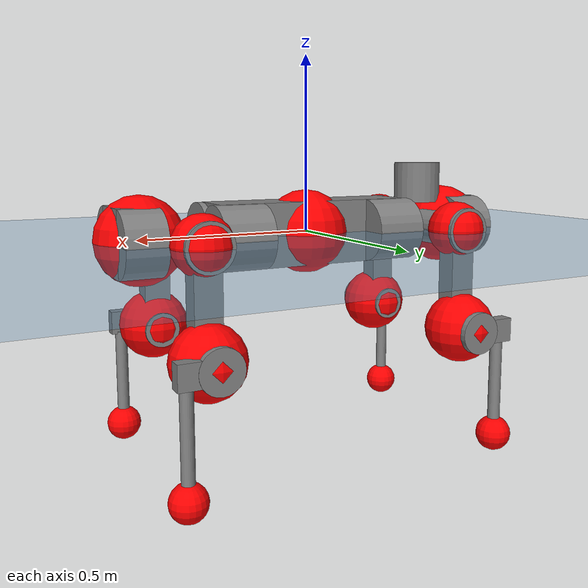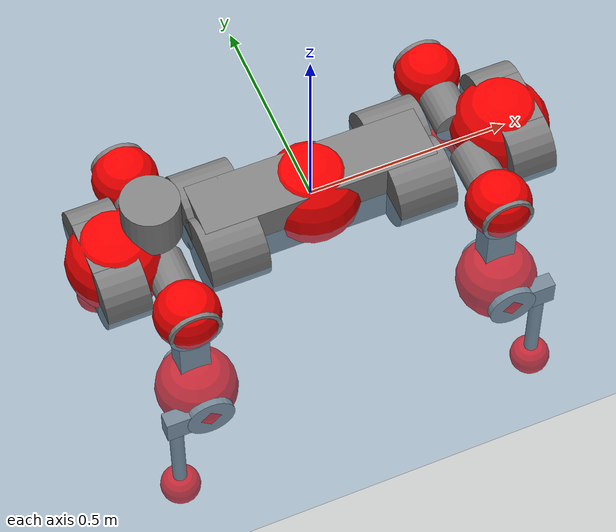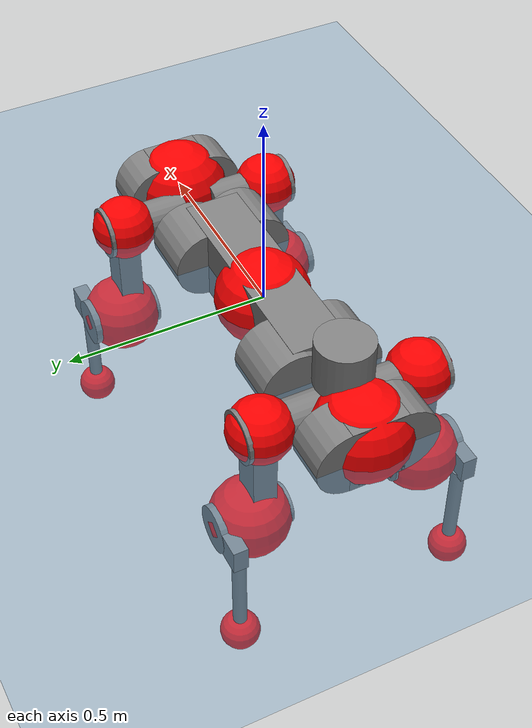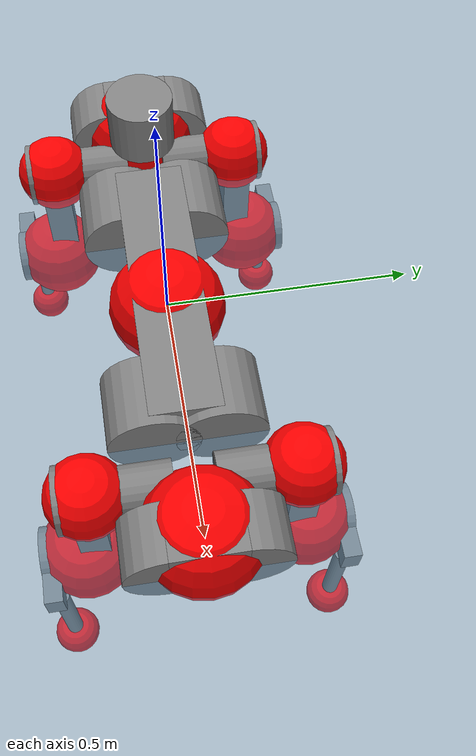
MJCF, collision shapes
<mujoco model="anymal_c">
  <compiler angle="radian" assetdir="assets" balanceinertia="true" inertiafromgeom="false"/>

  <option timestep="0.005" density="1.2" viscosity="2e-05"/>

  <size nkey="1"/>

  <visual>
    <quality shadowsize="8192"/>
    <map shadowclip="0.5"/>
  </visual>

  <default>
    <default class="/">
      <material specular="0" shininess="0.25"/>
      <geom contype="0" conaffinity="0" group="1" solref="-1000 -80"/>
      <site size="0.01 0.005 0.005" group="5"/>
      <general forcelimited="true" forcerange="-80 80" biastype="affine" gainprm="80" biasprm="0 -80 -2"/>
      <default class="anymal_c">
        <joint armature="0.01" damping="0.01" frictionloss="0.1"/>
        <default class="visual">
          <geom type="mesh" group="2"/>
          <default class="visual_zflip"/>
        </default>
        <default class="collision">
          <geom type="cylinder" group="3"/>
          <default class="foot">
            <geom size="0.03 0 0" type="sphere" condim="6" priority="1" friction="0.8 0.02 0.01" solimp="0.015 1 0.03"/>
          </default>
        </default>
      </default>
      <default class="reward_collision_sphere">
        <geom group="5" rgba="1 0 0 1"/>
      </default>
    </default>
  </default>

  <asset>
    <texture type="skybox" colorspace="auto" name="//unnamed_texture_0" builtin="gradient" rgb1="0.95 0.95 0.95" rgb2="0.95 0.95 0.95" width="100" height="600"/>
    <texture type="2d" colorspace="auto" name="texplane" builtin="checker" rgb1="0.345 0.575 0.748" rgb2="0.345 0.575 0.748" markrgb="1 1 1" width="512" height="512"/>
    <texture type="2d" colorspace="linear" name="base" file="base.png"/>
    <texture type="2d" colorspace="linear" name="top_shell" file="top_shell.png"/>
    <texture type="2d" colorspace="linear" name="bottom_shell" file="bottom_shell.png"/>
    <texture type="2d" colorspace="linear" name="remote" file="remote.png"/>
    <texture type="2d" colorspace="linear" name="hatch" file="hatch.png"/>
    <texture type="2d" colorspace="linear" name="handle" file="handle.png"/>
    <texture type="2d" colorspace="linear" name="face" file="face.png"/>
    <texture type="2d" colorspace="linear" name="battery" file="battery.png"/>
    <texture type="2d" colorspace="linear" name="lidar_cage" file="lidar_cage.png"/>
    <texture type="2d" colorspace="linear" name="depth_camera" file="depth_camera.png"/>
    <texture type="2d" colorspace="linear" name="wide_angle_camera" file="wide_angle_camera.png"/>
    <texture type="2d" colorspace="linear" name="lidar" file="lidar.png"/>
    <texture type="2d" colorspace="linear" name="drive" file="drive.png"/>
    <texture type="2d" colorspace="linear" name="hip_l" file="hip_l.png"/>
    <texture type="2d" colorspace="linear" name="shank_l" file="shank_l.png"/>
    <texture type="2d" colorspace="linear" name="foot" file="foot.png"/>
    <texture type="2d" colorspace="linear" name="thigh" file="thigh.png"/>
    <texture type="2d" colorspace="linear" name="shank_r" file="shank_r.png"/>
    <texture type="2d" colorspace="linear" name="hip_r" file="hip_r.png"/>
    <material name="MatPlane" class="/" texture="texplane" texuniform="true" texrepeat="2 2" specular="0.9" shininess="0.5"/>
    <material name="black_plastic" class="/" rgba="0.007 0.007 0.007 1"/>
    <material name="green" class="/" rgba="0.052 0.178 0.033 1"/>
    <material name="red" class="/" rgba="0.178 0.006 0.005 1"/>
    <material name="yellow" class="/" rgba="0.178 0.119 0.006 1"/>
    <material name="lwl" class="/" rgba="0.8 0.8 0.8 1"/>
    <material name="base" class="/" texture="base"/>
    <material name="top_shell" class="/" texture="top_shell"/>
    <material name="bottom_shell" class="/" texture="bottom_shell"/>
    <material name="hip_l" class="/" texture="hip_l"/>
    <material name="thigh" class="/" texture="thigh"/>
    <material name="shank_l" class="/" texture="shank_l"/>
    <material name="foot" class="/" texture="foot"/>
    <material name="hip_r" class="/" texture="hip_r"/>
    <material name="shank" class="/" texture="shank_r"/>
    <material name="hatch" class="/" texture="hatch"/>
    <material name="remote" class="/" texture="remote"/>
    <material name="handle" class="/" texture="handle"/>
    <material name="face" class="/" texture="face"/>
    <material name="depth_camera" class="/" texture="depth_camera"/>
    <material name="wide_angle_camera" class="/" texture="wide_angle_camera"/>
    <material name="battery" class="/" texture="battery"/>
    <material name="lidar_cage" class="/" texture="lidar_cage"/>
    <material name="lidar" class="/" texture="lidar"/>
    <material name="drive" class="/" texture="drive"/>
    <mesh name="base_0" class="/" file="base_0.obj"/>
    <mesh name="base_1" class="/" file="base_1.obj"/>
    <mesh name="base_2" class="/" file="base_2.obj"/>
    <mesh name="base_3" class="/" file="base_3.obj"/>
    <mesh name="base_4" class="/" file="base_4.obj"/>
    <mesh name="base_5" class="/" file="base_5.obj"/>
    <mesh name="top_shell" class="/" file="top_shell.obj"/>
    <mesh name="bottom_shell" class="/" file="bottom_shell.obj"/>
    <mesh name="remote" class="/" file="remote.obj"/>
    <mesh name="handle" class="/" file="handle.obj"/>
    <mesh name="face" class="/" file="face.obj"/>
    <mesh name="wide_angle_camera" class="/" file="wide_angle_camera.obj"/>
    <mesh name="depth_camera" class="/" file="depth_camera.obj"/>
    <mesh name="battery" class="/" file="battery.obj"/>
    <mesh name="lidar_cage" class="/" file="lidar_cage.obj"/>
    <mesh name="lidar" class="/" file="lidar.obj"/>
    <mesh name="drive" class="/" file="drive.obj"/>
    <mesh name="hip_l" class="/" file="hip_l.obj"/>
    <mesh name="thigh" class="/" file="thigh.obj"/>
    <mesh name="shank_l" class="/" file="shank_l.obj"/>
    <mesh name="foot" class="/" file="foot.obj"/>
    <mesh name="hip_r" class="/" file="hip_r.obj"/>
    <mesh name="hatch" class="/" file="hatch.obj"/>
    <mesh name="shank_r" class="/" file="shank_r.obj"/>
  </asset>

  <worldbody>
    <geom name="floor" class="/" size="100 100 0.125" type="plane" group="0" material="MatPlane"/>
    <light name="toplight_shadow" class="/" pos="0 0 5" dir="0.0990148 0.0990148 -0.990148" type="directional" ambient="0.04 0.04 0.04" diffuse="0.55 0.55 0.55" specular="0.12 0.12 0.12"/>
    <light name="toplight_fill" class="/" pos="0 0 5" dir="0.0990148 0.0990148 -0.990148" type="directional" castshadow="false" ambient="0.04 0.04 0.04" diffuse="0.3 0.3 0.3" specular="0.08 0.08 0.08"/>
    <body name="trunk" childclass="anymal_c" pos="0.00178825 -9.54232e-05 0.000956122" quat="1 -4.89347e-05 0.000620516 -0.000203467">
      <inertial pos="0.000891892 -0.000892138 0.0493563" quat="0.498491 0.500214 0.50085 0.500441" mass="18.6978" diaginertia="0.955982 0.414285 0.211722"/>
      <joint name="//unnamed_joint_0" type="free" armature="0" damping="0" frictionloss="0"/>
      <geom name="//unnamed_geom_1" class="visual" material="green" mesh="base_0"/>
      <geom name="//unnamed_geom_2" class="visual" material="yellow" mesh="base_1"/>
      <geom name="//unnamed_geom_3" class="visual" material="red" mesh="base_2"/>
      <geom name="//unnamed_geom_4" class="visual" material="black_plastic" mesh="base_3"/>
      <geom name="//unnamed_geom_5" class="visual" material="lwl" mesh="base_4"/>
      <geom name="//unnamed_geom_6" class="visual" material="base" mesh="base_5"/>
      <geom name="trunk_1" class="collision" size="0.290179 0.0700431 0.0900554" type="box"/>
      <geom name="trunk_2" class="collision" size="0.0900554 0.0725447" pos="0.235652 0.0645117 0" quat="0.707107 0 0.707107 0"/>
      <geom name="trunk_3" class="collision" size="0.0900554 0.0725447" pos="-0.235652 0.0645117 0" quat="0.707107 0 0.707107 0"/>
      <geom name="trunk_4" class="collision" size="0.0900554 0.0725447" pos="0.235652 -0.0645117 0" quat="0.707107 0 0.707107 0"/>
      <geom name="trunk_5" class="collision" size="0.0900554 0.0725447" pos="-0.235652 -0.0645117 0" quat="0.707107 0 0.707107 0"/>
      <geom name="//unnamed_geom_12" class="visual" material="top_shell" mesh="top_shell"/>
      <geom name="//unnamed_geom_13" class="visual" material="bottom_shell" mesh="bottom_shell"/>
      <geom name="//unnamed_geom_14" class="visual" material="remote" mesh="remote"/>
      <geom name="//unnamed_geom_15" class="visual" material="handle" mesh="handle"/>
      <geom name="//unnamed_geom_16" class="visual" pos="0.449094 0 0" quat="1 0 0 0" material="face" mesh="face"/>
      <geom name="trunk_6" class="collision" size="0.0550339 0.0700431 0.0900554" pos="0.508684 0 0" type="box"/>
      <geom name="//unnamed_geom_18" class="collision" size="0.0900554 0.0550339" pos="0.508684 0.0645117 0" quat="0.707107 0 0.707107 0"/>
      <geom name="//unnamed_geom_19" class="collision" size="0.0900554 0.0550339" pos="0.508684 -0.0645117 0" quat="0.707107 0 0.707107 0"/>
      <geom name="//unnamed_geom_20" class="visual" pos="0.500175 0 -0.0284477" quat="0.965926 0 0.258819 0" material="depth_camera" mesh="depth_camera"/>
      <geom name="//unnamed_geom_21" class="visual" pos="0.555814 0 0.014922" material="wide_angle_camera" mesh="wide_angle_camera"/>
      <geom name="//unnamed_geom_22" class="visual_zflip" pos="-0.449094 0 0" quat="0 0 0 1" material="face" mesh="face"/>
      <geom name="trunk_7" class="collision" size="0.0550339 0.0700431 0.0900554" pos="-0.508684 0 0" quat="0 0 0 1" type="box"/>
      <geom name="//unnamed_geom_24" class="collision" size="0.0900554 0.0550339" pos="-0.508684 -0.0645117 0" quat="0 -0.707107 0 0.707107"/>
      <geom name="//unnamed_geom_25" class="collision" size="0.0900554 0.0550339" pos="-0.508684 0.0645117 0" quat="0 -0.707107 0 0.707107"/>
      <geom name="//unnamed_geom_26" class="visual" pos="-0.500175 0 -0.0284477" quat="0 -0.258819 0 0.965926" material="depth_camera" mesh="depth_camera"/>
      <geom name="//unnamed_geom_27" class="visual_zflip" pos="-0.555814 0 0.014922" quat="0 0 0 1" material="wide_angle_camera" mesh="wide_angle_camera"/>
      <geom name="//unnamed_geom_28" class="visual" material="battery" mesh="battery"/>
      <geom name="//unnamed_geom_29" class="visual" pos="0 0.0683377 0.0296155" quat="0.683013 -0.183013 0.183013 0.683013" material="depth_camera" mesh="depth_camera"/>
      <geom name="//unnamed_geom_30" class="visual" pos="0 -0.0683377 0.0296155" quat="0.683013 0.183013 0.183013 -0.683013" material="depth_camera" mesh="depth_camera"/>
      <geom name="//unnamed_geom_31" class="visual" pos="-0.394379 0 0.0732643" quat="1 0 0 0" material="lidar_cage" mesh="lidar_cage"/>
      <geom name="trunk_8" class="collision" size="0.0700431 0.060037" pos="-0.394379 0 0.133072"/>
      <geom name="//unnamed_geom_33" class="visual" pos="-0.394379 -6.35916e-05 0.141744" quat="0.707107 0 0 -0.707107" material="lidar" mesh="lidar"/>
      <geom name="//unnamed_geom_34" class="visual" pos="0.324929 0.0958727 -1.29716e-09" quat="0.258819 0.965926 0 0" material="drive" mesh="drive"/>
      <geom name="//unnamed_geom_35" class="visual" pos="0.324929 -0.0958727 1.29716e-09" quat="0.258819 -0.965926 0 0" material="drive" mesh="drive"/>
      <geom name="//unnamed_geom_36" class="visual" pos="-0.324929 0.0958727 1.29716e-09" quat="0 0 0.965926 -0.258819" material="drive" mesh="drive"/>
      <geom name="//unnamed_geom_37" class="visual" pos="-0.324929 -0.0958727 -1.29716e-09" quat="0 0 -0.965926 -0.258819" material="drive" mesh="drive"/>
      <geom name="//unnamed_geom_38" class="visual" pos="0.125681 0 0.0727659" quat="1 0 0 0" material="hatch" mesh="hatch"/>
      <geom name="//unnamed_geom_39" class="reward_collision_sphere" size="0.120074"/>
      <geom name="//unnamed_geom_40" class="reward_collision_sphere" size="0.120074" pos="0.487557 0 0"/>
      <geom name="//unnamed_geom_41" class="reward_collision_sphere" size="0.120074" pos="-0.487557 0 0"/>
      <site name="imu" pos="0.268347 0.00369915 0.0518235" size="0.0100062"/>
      <camera name="track" pos="0 -1.84319 0" quat="0.707107 0.707107 0 0" mode="trackcom"/>
      <camera name="ego_camera" pos="0.487557 0 -0.0398717" quat="-0.5 -0.5 0.5 0.5"/>
      <body name="LF_HIP" pos="0.3253 0.0958878 4.25273e-05" quat="0.258944 0.965892 0.000474883 7.24605e-05">
        <inertial pos="0.0613712 -0.0137817 -0.00871142" quat="-0.127308 0.711032 -0.135929 0.678048" mass="2.82173" diaginertia="0.00895134 0.00323714 0.00323276"/>
        <joint name="LF_HAA" pos="0 0 0" axis="0.999936 -0.00878158 -0.00711729" range="-0.686352 0.47933" armature="0.00992154" damping="0.00550531" frictionloss="0.0994836"/>
        <geom name="//unnamed_geom_42" class="visual" pos="0 -7.63058e-05 1.25332e-05" quat="0.258819 -0.965926 0 0" material="hip_l" mesh="hip_l"/>
        <geom name="//unnamed_geom_43" class="visual" pos="0.0648992 -0.0765347 -0.0447435" quat="0.183013 -0.683013 0.683013 0.183013" material="drive" mesh="drive"/>
        <geom name="//unnamed_geom_44" class="collision" size="0.0500308 0.0700431" pos="0.0648992 -0.0110221 -0.00688286" quat="-0.353553 -0.612372 0.612372 -0.353553"/>
        <body name="LF_THIGH" pos="0.0642914 -0.0669288 -0.0430503" quat="0.182724 -0.683073 0.683083 0.182815">
          <inertial pos="0.0336122 0.000554297 -0.246112" quat="0.993157 -0.00501073 -0.0807478 0.0842273" mass="3.07393" diaginertia="0.0446071 0.0198936 0.00421277"/>
          <joint name="LF_HFE" pos="0 0 0" axis="0.999995 -0.000218768 -0.00300686" range="-3.16145 3.14124" armature="0.0103743" damping="0.00852291" frictionloss="0.104091"/>
          <geom name="//unnamed_geom_45" class="visual" pos="0.00322043 5.07465e-06 0" quat="0.707107 0 0 -0.707107" material="thigh" mesh="thigh"/>
          <geom name="//unnamed_geom_46" class="collision" size="0.06504 0.0400246" pos="0.0433384 0 0" quat="0.5 0.5 -0.5 -0.5"/>
          <geom name="//unnamed_geom_47" class="collision" size="0.0375231 0.0300185 0.141401" pos="0.0325038 0 -0.140861" quat="0.707107 0 0 -0.707107" type="box"/>
          <geom name="//unnamed_geom_48" class="visual" pos="0.108671 0 -0.284086" quat="1 0 0 0" material="drive" mesh="drive"/>
          <geom name="//unnamed_geom_49" class="collision" size="0.0500308 0.0700431" pos="0.0328288 0 -0.284086" quat="0.707107 0 0.707107 0"/>
          <geom name="//unnamed_geom_50" class="reward_collision_sphere" size="0.0800493" pos="0.0270865 0 0"/>
          <body name="LF_SHANK" pos="0.108912 -0.00157713 -0.283878" quat="1 -3.69247e-05 -0.000184252 1.17372e-05">
            <inertial pos="0.00535027 -0.0566524 -0.0806986" quat="0.992493 -0.119687 -0.00365061 -0.0248771" mass="0.589602" diaginertia="0.0156561 0.00625265 0.0011195"/>
            <joint name="LF_KFE" pos="0 0 0" axis="0.999985 0.000952395 0.00538087" range="-3.16511 3.13706" armature="0.00961368" damping="0.00415409" frictionloss="0.0957476"/>
            <geom name="//unnamed_geom_51" class="visual" pos="0.00105011 0.00559926 0" quat="0.707107 0 0 -0.707107" material="shank_l" mesh="shank_l"/>
            <geom name="LF_kfe_act" class="collision" size="0.060037 0.0200123" pos="0.0216692 0 0" quat="0.5 0.5 -0.5 -0.5"/>
            <geom name="//unnamed_geom_53" class="collision" size="0.0575344 0.0337708 0.0190117" pos="0.0216692 -0.0529909 0" quat="0.5 0.5 -0.5 -0.5" type="box"/>
            <geom name="//unnamed_geom_54" class="visual" pos="0.0141389 -0.07925 -0.336886" quat="0.382683 0 0 -0.92388" material="foot" mesh="foot"/>
            <geom name="LF_calf" class="collision" size="0.0175108 0.141339" pos="0.0141391 -0.0810544 -0.168443" quat="0.707107 0 0 -0.707107"/>
            <geom name="LF_foot" class="foot" size="0.0325757" pos="0.0141391 -0.0810544 -0.314458" quat="0.707107 0 0 -0.707107"/>
            <geom name="//unnamed_geom_57" class="reward_collision_sphere" size="0.100062" pos="-0.0541729 0 0"/>
            <geom name="//unnamed_geom_58" class="reward_collision_sphere" size="0.0500308" pos="0.0141391 -0.0810544 -0.314458"/>
            <site name="LF_foot" class="foot" pos="0.0141391 -0.0810544 -0.314458" quat="0.707107 0 0 -0.707107" size="0.0100062"/>
          </body>
        </body>
      </body>
      <body name="RF_HIP" pos="0.325835 -0.0963504 -0.0010497" quat="0.258706 -0.965956 0.000207464 -7.36831e-05">
        <inertial pos="0.0606586 0.0136408 -0.00831261" quat="0.133245 0.679094 0.130585 0.709947" mass="2.77699" diaginertia="0.00881151 0.00329941 0.00328427"/>
        <joint name="RF_HAA" pos="0 0 0" axis="0.999983 0.00134205 0.0056575" range="-0.507583 0.723522" armature="0.00976497" damping="0.01124" frictionloss="0.0963181"/>
        <geom name="//unnamed_geom_59" class="visual" pos="0 7.63052e-05 1.25331e-05" quat="0.258819 0.965926 0 0" material="hip_r" mesh="hip_r"/>
        <geom name="//unnamed_geom_60" class="visual" pos="0.0648992 0.0765347 -0.0447435" quat="0.183013 0.683013 0.683013 -0.183013" material="drive" mesh="drive"/>
        <geom name="//unnamed_geom_61" class="collision" size="0.0500308 0.0700431" pos="0.0648992 0.0110221 -0.00688286" quat="-0.353553 0.612372 0.612372 0.353553"/>
        <body name="RF_THIGH" pos="0.0652083 0.0649735 -0.0428515" quat="0.183012 0.683012 0.683013 -0.183014">
          <inertial pos="0.032708 -0.000307539 -0.245047" quat="0.992799 -0.0063986 -0.0815014 0.0875556" mass="3.09194" diaginertia="0.0455043 0.0202808 0.00419923"/>
          <joint name="RF_HFE" pos="0 0 0" axis="1 9.6181e-05 -5.8187e-05" range="-3.15269 3.14952" armature="0.00995069" damping="0.0096696" frictionloss="0.0951901"/>
          <geom name="//unnamed_geom_62" class="visual" pos="0.00322043 5.07465e-06 0" quat="0.707107 0 0 -0.707107" material="thigh" mesh="thigh"/>
          <geom name="//unnamed_geom_63" class="collision" size="0.06504 0.0400246" pos="0.0433384 0 0" quat="0.5 0.5 0.5 0.5"/>
          <geom name="//unnamed_geom_64" class="collision" size="0.0375231 0.0300185 0.141401" pos="0.0325038 0 -0.140861" quat="0.707107 0 0 0.707107" type="box"/>
          <geom name="//unnamed_geom_65" class="visual" pos="0.108671 0 -0.284086" quat="1 0 0 0" material="drive" mesh="drive"/>
          <geom name="//unnamed_geom_66" class="collision" size="0.0500308 0.0700431" pos="0.0328288 0 -0.284086" quat="0.707107 0 0.707107 0"/>
          <geom name="//unnamed_geom_67" class="reward_collision_sphere" size="0.0800493" pos="0.0270865 0 0"/>
          <body name="RF_SHANK" pos="0.108405 -0.00020476 -0.283127" quat="1 -2.27774e-06 -1.41697e-06 -2.07209e-06">
            <inertial pos="0.00589402 0.0564717 -0.0803217" quat="0.993146 0.114722 0.00294597 0.0221529" mass="0.591579" diaginertia="0.0151806 0.00614668 0.00110221"/>
            <joint name="RF_KFE" pos="0 0 0" axis="0.999993 -0.00245407 -0.00269616" range="-3.12578 3.13393" armature="0.0103827" damping="0.00927972" frictionloss="0.104798"/>
            <geom name="//unnamed_geom_68" class="visual" pos="0.00105011 -0.00559925 0" quat="0.707107 0 0 0.707107" material="shank" mesh="shank_r"/>
            <geom name="RF_kfe_act" class="collision" size="0.060037 0.0200123" pos="0.0216692 0 0" quat="0.5 0.5 0.5 0.5"/>
            <geom name="//unnamed_geom_70" class="collision" size="0.0575344 0.0337708 0.0190117" pos="0.0216692 0.0529909 0" quat="0.5 0.5 0.5 0.5" type="box"/>
            <geom name="//unnamed_geom_71" class="visual" pos="0.0141394 0.07925 -0.336886" quat="0.382683 0 0 0.92388" material="foot" mesh="foot"/>
            <geom name="RF_calf" class="collision" size="0.0175108 0.141339" pos="0.0141391 0.0810544 -0.168443" quat="0.707107 0 0 0.707107"/>
            <geom name="RF_foot" class="foot" size="0.0294634" pos="0.0141391 0.0810544 -0.314458" quat="0.707107 0 0 0.707107"/>
            <geom name="//unnamed_geom_74" class="reward_collision_sphere" size="0.100062" pos="-0.0541729 0 0"/>
            <geom name="//unnamed_geom_75" class="reward_collision_sphere" size="0.0500308" pos="0.0141391 0.0810544 -0.314458"/>
            <site name="RF_foot" class="foot" pos="0.0141391 0.0810544 -0.314458" quat="0.707107 0 0 0.707107" size="0.0100062"/>
          </body>
        </body>
      </body>
      <body name="LH_HIP" pos="-0.324675 0.0962857 0.000738064" quat="-0.000141772 0.000286677 0.965927 -0.258814">
        <inertial pos="0.0606186 0.0153141 -0.00842983" quat="0.133383 0.681829 0.135954 0.706282" mass="2.83883" diaginertia="0.00879496 0.00328877 0.00329077"/>
        <joint name="LH_HAA" pos="0 0 0" axis="0.999999 -0.000931853 -0.00116887" range="-0.504054 0.73566" armature="0.00973651" damping="0.0127378" frictionloss="0.10537"/>
        <geom name="//unnamed_geom_76" class="visual" pos="0 7.63052e-05 1.25331e-05" quat="-0.258819 -0.965926 0 0" material="hip_r" mesh="hip_r"/>
        <geom name="//unnamed_geom_77" class="visual" pos="0.0648992 0.0765347 -0.0447435" quat="0.183013 0.683013 0.683013 -0.183013" material="drive" mesh="drive"/>
        <geom name="//unnamed_geom_78" class="collision" size="0.0500308 0.0700431" pos="0.0648992 0.0110221 -0.00688286" quat="-0.353553 0.612372 0.612372 0.353553"/>
        <body name="LH_THIGH" pos="0.0644601 0.0659203 -0.0416089" quat="0.182895 0.683224 0.6829 -0.182762">
          <inertial pos="0.0335659 6.51372e-05 -0.244332" quat="0.992767 -0.00787725 -0.0828786 0.0865049" mass="3.12024" diaginertia="0.0448244 0.0198908 0.00408062"/>
          <joint name="LH_HFE" pos="0 0 0" axis="0.999992 0.003957 -0.00105749" range="-3.14447 3.14293" armature="0.0100626" damping="0.0125095" frictionloss="0.0996202"/>
          <geom name="//unnamed_geom_79" class="visual" pos="0.00322043 5.07465e-06 0" quat="0.707107 0 0 -0.707107" material="thigh" mesh="thigh"/>
          <geom name="//unnamed_geom_80" class="collision" size="0.06504 0.0400246" pos="0.0433384 0 0" quat="0.5 0.5 -0.5 -0.5"/>
          <geom name="//unnamed_geom_81" class="collision" size="0.0375231 0.0300185 0.141401" pos="0.0325038 0 -0.140861" quat="0.707107 0 0 -0.707107" type="box"/>
          <geom name="//unnamed_geom_82" class="visual" pos="0.108671 0 -0.284086" quat="1 0 0 0" material="drive" mesh="drive"/>
          <geom name="//unnamed_geom_83" class="collision" size="0.0500308 0.0700431" pos="0.0328288 0 -0.284086" quat="0.707107 0 0.707107 0"/>
          <geom name="//unnamed_geom_84" class="reward_collision_sphere" size="0.0800493" pos="0.0270865 0 0"/>
          <body name="LH_SHANK" pos="0.10886 -0.000260256 -0.285292" quat="1 3.30349e-05 1.18232e-05 6.96953e-05">
            <inertial pos="0.00674735 0.0579973 -0.0802619" quat="0.992473 0.119878 0.000316135 0.0250201" mass="0.584409" diaginertia="0.0151835 0.00607831 0.00106796"/>
            <joint name="LH_KFE" pos="0 0 0" axis="0.999997 0.00248535 0.000733116" range="-3.14059 3.12157" armature="0.00965579" damping="0.0101992" frictionloss="0.107905"/>
            <geom name="//unnamed_geom_85" class="visual" pos="0.00105011 -0.00559925 0" quat="-0.707107 0 0 -0.707107" material="shank" mesh="shank_r"/>
            <geom name="LH_kfe_act" class="collision" size="0.060037 0.0200123" pos="0.0216692 0 0" quat="0.5 0.5 -0.5 -0.5"/>
            <geom name="//unnamed_geom_87" class="collision" size="0.0575344 0.0337708 0.0190117" pos="0.0216692 0.0529909 0" quat="0.5 0.5 -0.5 -0.5" type="box"/>
            <geom name="//unnamed_geom_88" class="visual" pos="0.0141394 0.07925 -0.336886" quat="-0.382683 0 0 -0.92388" material="foot" mesh="foot"/>
            <geom name="LH_calf" class="collision" size="0.0175108 0.141339" pos="0.0141391 0.0810544 -0.168443" quat="0.707107 0 0 -0.707107"/>
            <geom name="LH_foot" class="foot" size="0.0312887" pos="0.0141391 0.0810544 -0.314458" quat="0.707107 0 0 -0.707107"/>
            <geom name="//unnamed_geom_91" class="reward_collision_sphere" size="0.100062" pos="-0.0541729 0 0"/>
            <geom name="//unnamed_geom_92" class="reward_collision_sphere" size="0.0500308" pos="0.0141391 0.0810544 -0.314458"/>
            <site name="LH_foot" class="foot" pos="0.0141391 0.0810544 -0.314458" quat="0.707107 0 0 -0.707107" size="0.0100062"/>
          </body>
        </body>
      </body>
      <body name="RH_HIP" pos="-0.325485 -0.0953928 -0.000122622" quat="-0.000649178 0.000500864 -0.965885 -0.25897">
        <inertial pos="0.0629923 -0.0141314 -0.010083" quat="-0.128019 0.710274 -0.135357 0.678822" mass="2.78449" diaginertia="0.00875458 0.0032788 0.0032221"/>
        <joint name="RH_HAA" pos="0 0 0" axis="0.999951 0.0094239 0.00315574" range="-0.738781 0.501161" armature="0.0104794" damping="0.00828723" frictionloss="0.101649"/>
        <geom name="//unnamed_geom_93" class="visual" pos="0 -7.63058e-05 1.25332e-05" quat="-0.258819 0.965926 0 0" material="hip_l" mesh="hip_l"/>
        <geom name="//unnamed_geom_94" class="visual" pos="0.0648992 -0.0765347 -0.0447435" quat="-0.183013 0.683013 -0.683013 -0.183013" material="drive" mesh="drive"/>
        <geom name="//unnamed_geom_95" class="collision" size="0.0500308 0.0700431" pos="0.0648992 -0.0110221 -0.00688286" quat="0.353553 0.612372 -0.612372 0.353553"/>
        <body name="RH_THIGH" pos="0.0648924 -0.0663734 -0.0435136" quat="-0.183046 0.682919 -0.683092 -0.183033">
          <inertial pos="0.0330734 0.000188349 -0.244648" quat="0.99317 -0.00510045 -0.0804916 0.0843114" mass="3.04806" diaginertia="0.0449527 0.0197983 0.00412485"/>
          <joint name="RH_HFE" pos="0 0 0" axis="1 -0.000356638 -8.35826e-06" range="-3.13877 3.16216" armature="0.0097928" damping="0.00753473" frictionloss="0.101525"/>
          <geom name="//unnamed_geom_96" class="visual" pos="0.00322043 5.07465e-06 0" quat="0.707107 0 0 -0.707107" material="thigh" mesh="thigh"/>
          <geom name="//unnamed_geom_97" class="collision" size="0.06504 0.0400246" pos="0.0433384 0 0" quat="0.5 0.5 0.5 0.5"/>
          <geom name="//unnamed_geom_98" class="collision" size="0.0375231 0.0300185 0.141401" pos="0.0325038 0 -0.140861" quat="0.707107 0 0 0.707107" type="box"/>
          <geom name="//unnamed_geom_99" class="visual" pos="0.108671 0 -0.284086" quat="1 0 0 0" material="drive" mesh="drive"/>
          <geom name="//unnamed_geom_100" class="collision" size="0.0500308 0.0700431" pos="0.0328288 0 -0.284086" quat="0.707107 0 0.707107 0"/>
          <geom name="//unnamed_geom_101" class="reward_collision_sphere" size="0.0800493" pos="0.0270865 0 0"/>
          <body name="RH_SHANK" pos="0.107965 0.000476543 -0.285253" quat="1 -0.000133875 -3.84552e-05 -0.000137279">
            <inertial pos="0.00599749 -0.0558068 -0.0801199" quat="0.992734 -0.11752 0.00262919 -0.0257211" mass="0.589364" diaginertia="0.0150234 0.00612598 0.00111044"/>
            <joint name="RH_KFE" pos="0 0 0" axis="0.999952 -0.00864639 0.00452283" range="-3.12495 3.1341" armature="0.0101871" damping="0.013022" frictionloss="0.101747"/>
            <geom name="//unnamed_geom_102" class="visual" pos="0.00105011 0.00559926 0" quat="0.707107 0 0 -0.707107" material="shank_l" mesh="shank_l"/>
            <geom name="RH_kfe_act" class="collision" size="0.060037 0.0200123" pos="0.0216692 0 0" quat="0.5 0.5 0.5 0.5"/>
            <geom name="//unnamed_geom_104" class="collision" size="0.0575344 0.0337708 0.0190117" pos="0.0216692 -0.0529909 0" quat="0.5 0.5 0.5 0.5" type="box"/>
            <geom name="//unnamed_geom_105" class="visual" pos="0.0141389 -0.07925 -0.336886" quat="0.382683 0 0 -0.92388" material="foot" mesh="foot"/>
            <geom name="RH_calf" class="collision" size="0.0175108 0.141339" pos="0.0141391 -0.0810544 -0.168443" quat="0.707107 0 0 0.707107"/>
            <geom name="RH_foot" class="foot" size="0.027297" pos="0.0141391 -0.0810544 -0.314458" quat="0.707107 0 0 0.707107"/>
            <geom name="//unnamed_geom_108" class="reward_collision_sphere" size="0.100062" pos="-0.0541729 0 0"/>
            <geom name="//unnamed_geom_109" class="reward_collision_sphere" size="0.0500308" pos="0.0141391 -0.0810544 -0.314458"/>
            <site name="RH_foot" class="foot" pos="0.0141391 -0.0810544 -0.314458" quat="0.707107 0 0 0.707107" size="0.0100062"/>
          </body>
        </body>
      </body>
    </body>
  </worldbody>

  <contact>
    <pair class="/" geom1="floor" geom2="LF_foot" name="//unnamed_contact_0"/>
    <pair class="/" geom1="floor" geom2="RF_foot" name="//unnamed_contact_1"/>
    <pair class="/" geom1="floor" geom2="LH_foot" name="//unnamed_contact_2"/>
    <pair class="/" geom1="floor" geom2="RH_foot" name="//unnamed_contact_3"/>
  </contact>

  <actuator>
    <general name="LF_HAA" class="/" joint="LF_HAA" forcerange="-80.9886 80.9886" gainprm="79.0185" biasprm="0 -79.0185 -1.92454"/>
    <general name="LF_HFE" class="/" joint="LF_HFE" forcerange="-82.7268 82.7268" gainprm="79.0185" biasprm="0 -79.0185 -1.92454"/>
    <general name="LF_KFE" class="/" joint="LF_KFE" forcerange="-79.5607 79.5607" gainprm="79.0185" biasprm="0 -79.0185 -1.92454"/>
    <general name="RF_HAA" class="/" joint="RF_HAA" forcerange="-81.1559 81.1559" gainprm="79.0185" biasprm="0 -79.0185 -1.92454"/>
    <general name="RF_HFE" class="/" joint="RF_HFE" forcerange="-79.102 79.102" gainprm="79.0185" biasprm="0 -79.0185 -1.92454"/>
    <general name="RF_KFE" class="/" joint="RF_KFE" forcerange="-79.9732 79.9732" gainprm="79.0185" biasprm="0 -79.0185 -1.92454"/>
    <general name="LH_HAA" class="/" joint="LH_HAA" forcerange="-85.3334 85.3334" gainprm="79.0185" biasprm="0 -79.0185 -1.92454"/>
    <general name="LH_HFE" class="/" joint="LH_HFE" forcerange="-83.2678 83.2678" gainprm="79.0185" biasprm="0 -79.0185 -1.92454"/>
    <general name="LH_KFE" class="/" joint="LH_KFE" forcerange="-77.0942 77.0942" gainprm="79.0185" biasprm="0 -79.0185 -1.92454"/>
    <general name="RH_HAA" class="/" joint="RH_HAA" forcerange="-81.7838 81.7838" gainprm="79.0185" biasprm="0 -79.0185 -1.92454"/>
    <general name="RH_HFE" class="/" joint="RH_HFE" forcerange="-84.6828 84.6828" gainprm="79.0185" biasprm="0 -79.0185 -1.92454"/>
    <general name="RH_KFE" class="/" joint="RH_KFE" forcerange="-81.703 81.703" gainprm="79.0185" biasprm="0 -79.0185 -1.92454"/>
  </actuator>

  <sensor>
    <gyro site="imu" name="imu_angular_velocity"/>
    <velocimeter site="imu" name="imu_linear_velocity"/>
    <framelinvel objtype="site" objname="LF_foot" name="LF_foot_global_linear_velocity"/>
    <framelinvel objtype="site" objname="RF_foot" name="RF_foot_global_linear_velocity"/>
    <framelinvel objtype="site" objname="LH_foot" name="LH_foot_global_linear_velocity"/>
    <framelinvel objtype="site" objname="RH_foot" name="RH_foot_global_linear_velocity"/>
  </sensor>

  <keyframe>
    <key name="home" qpos="0 0 0.55 1 0 0 0 0 0.4 -0.8 0 -0.4 0.8 0 -0.4 0.8 0 0.4 -0.8"/>
  </keyframe>
</mujoco>
